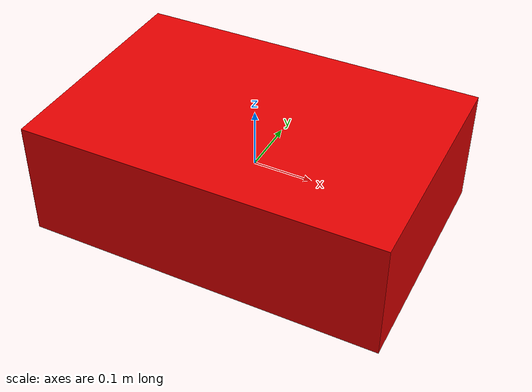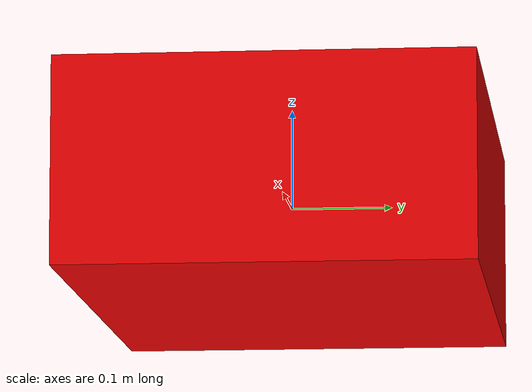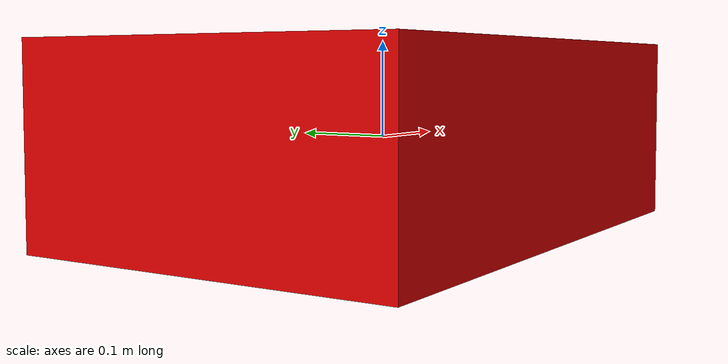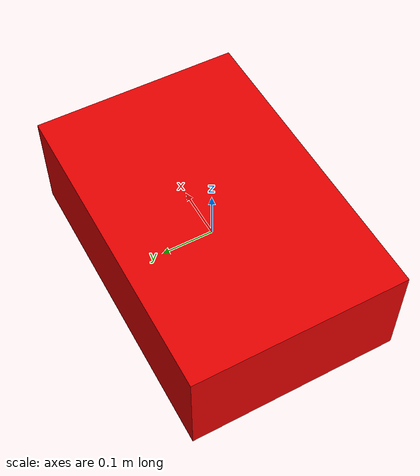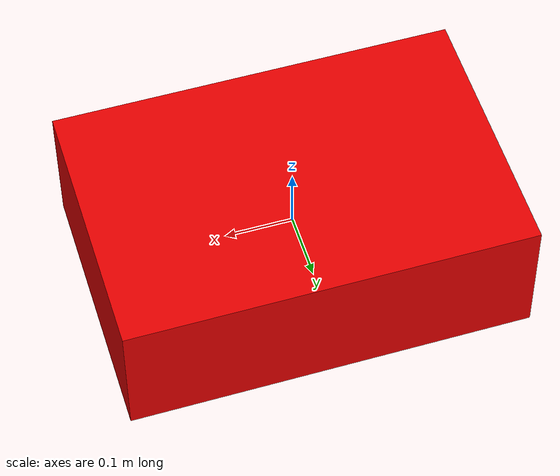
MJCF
<mujoco>
    <compiler angle="radian"/>
    <option timestep="0.01" gravity="0 0 0"/>

    <worldbody>
      <body pos="0 0 0" quat="1 0 0 0">
        <inertial pos="0 0 0" xyaxes="1 0 0 0 1 0" mass="1.5" diaginertia="0.3 0.4 0.5"/>

        <joint name="trans_x" type="slide" axis="1 0 0" damping="5"/>
        <joint name="trans_y" type="slide" axis="0 1 0" damping="5"/>
        <joint name="trans_z" type="slide" axis="0 0 1" damping="5"/>

        <joint name="rot_x" type="hinge" axis="1 0 0" damping="2"/>
        <joint name="rot_y" type="hinge" axis="0 1 0" damping="2"/>
        <joint name="rot_z" type="hinge" axis="0 0 1" damping="2"/>

        <geom type="box" size=".3 .2 .1" rgba="0.9 0 0 1"/>
      </body>
    </worldbody>

    <actuator>
        <motor name="trans_x" joint="trans_x"/>
        <motor name="trans_y" joint="trans_y"/>
        <motor name="trans_z" joint="trans_z"/>

        <motor name="rot_x" joint="rot_x"/>
        <motor name="rot_y" joint="rot_y"/>
        <motor name="rot_z" joint="rot_z"/>
    </actuator>
</mujoco>
